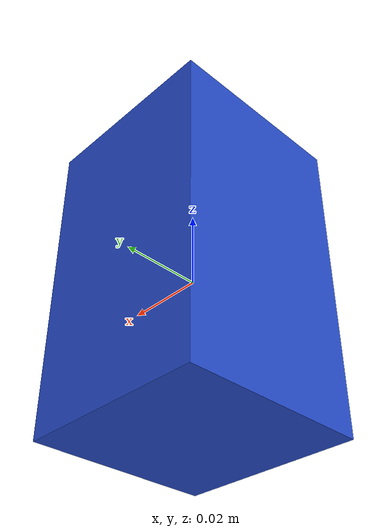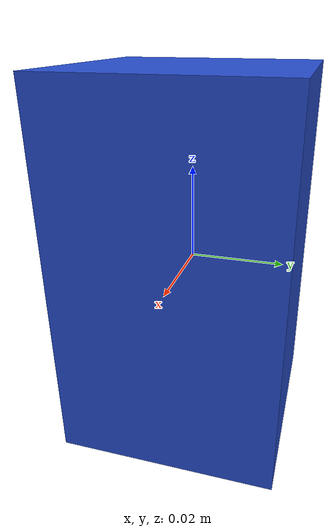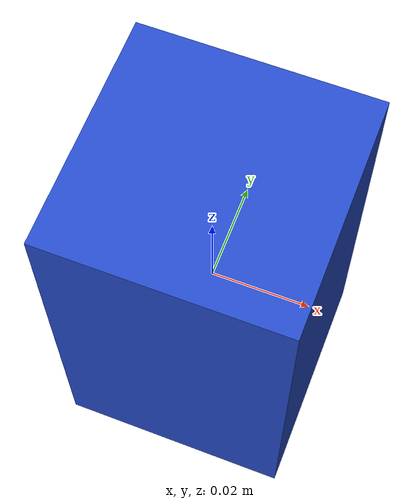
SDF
<sdf version='1.6'>
  <model name='cup'>
    <link name='base_link'>
      <pose frame=''>0 0 0 0 -0 0</pose>
      <inertial>
        <pose frame=''>0 0 0 0 -0 0</pose>
        <mass>5.0</mass>
      </inertial>
      <collision name='base_link_collision'>
        <pose frame=''>0 0 0 0 -0 0</pose>
        <geometry>
          <box>
            <size>0.047 0.047 0.08</size>
          </box>
        </geometry>
        <surface>
          <friction>
            <ode>
              <mu>10.0</mu>
              <mu2>10.0</mu2>
            </ode>
          </friction>
      </surface>
      </collision>
      <visual name='base_link_visual'>
        <pose frame=''>0 0 0 0 -0 0</pose>
        <geometry>
          <box>
            <size>0.047 0.047 0.08</size>
          </box>
        </geometry>
        <material>
          <script>
            <name>Gazebo/Blue</name>
            <uri>file://media/materials/scripts/gazebo.material</uri>
          </script>
        </material>
      </visual>
    </link>
  </model>
</sdf>
